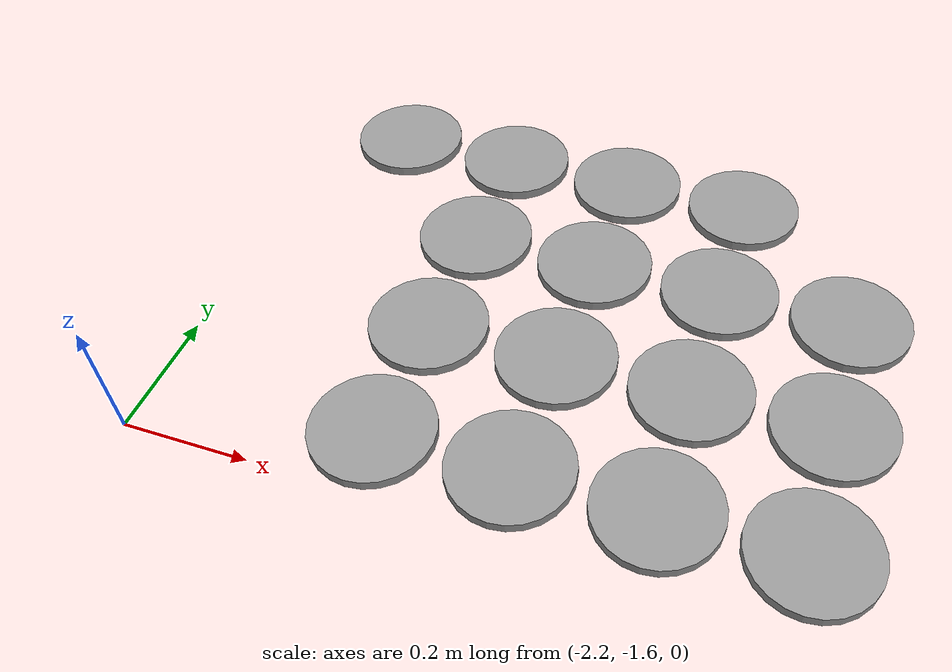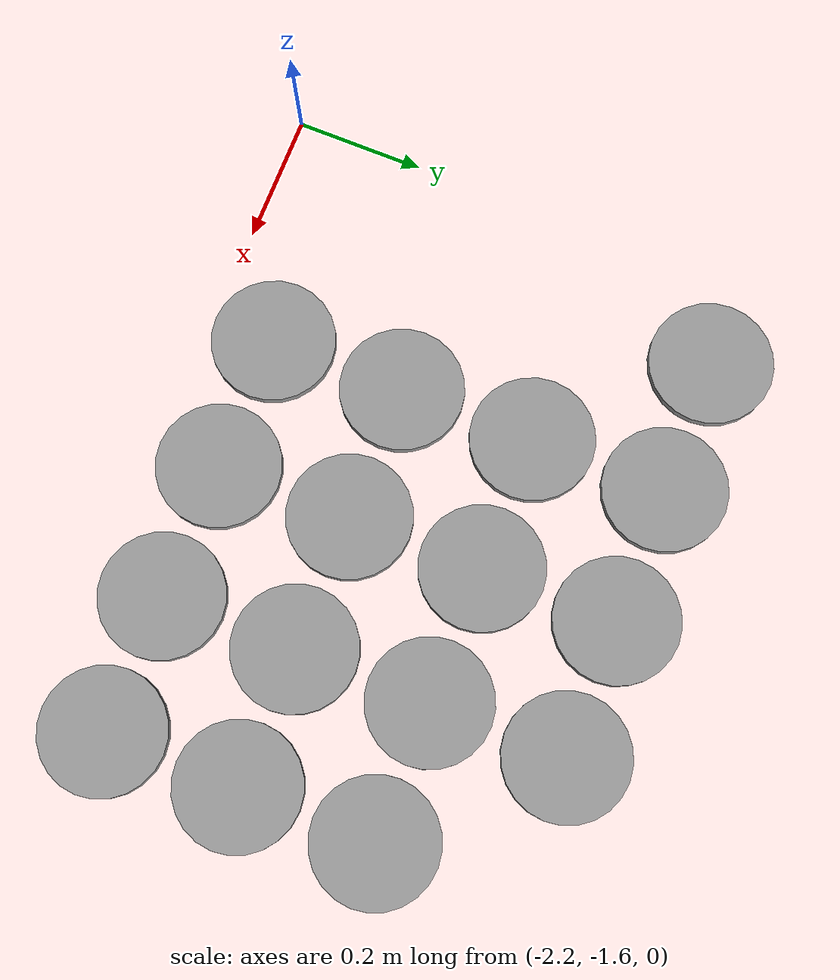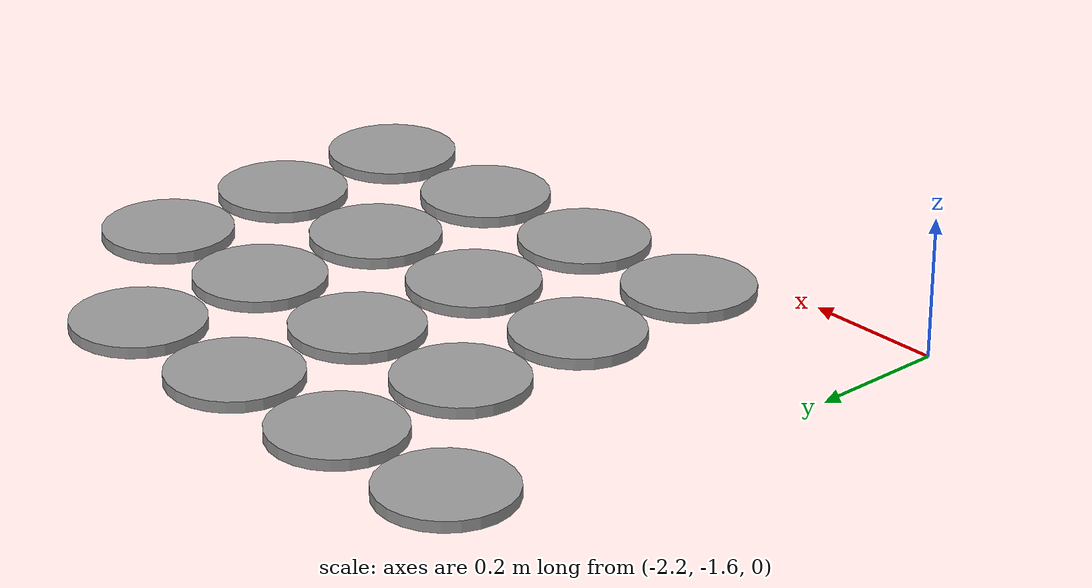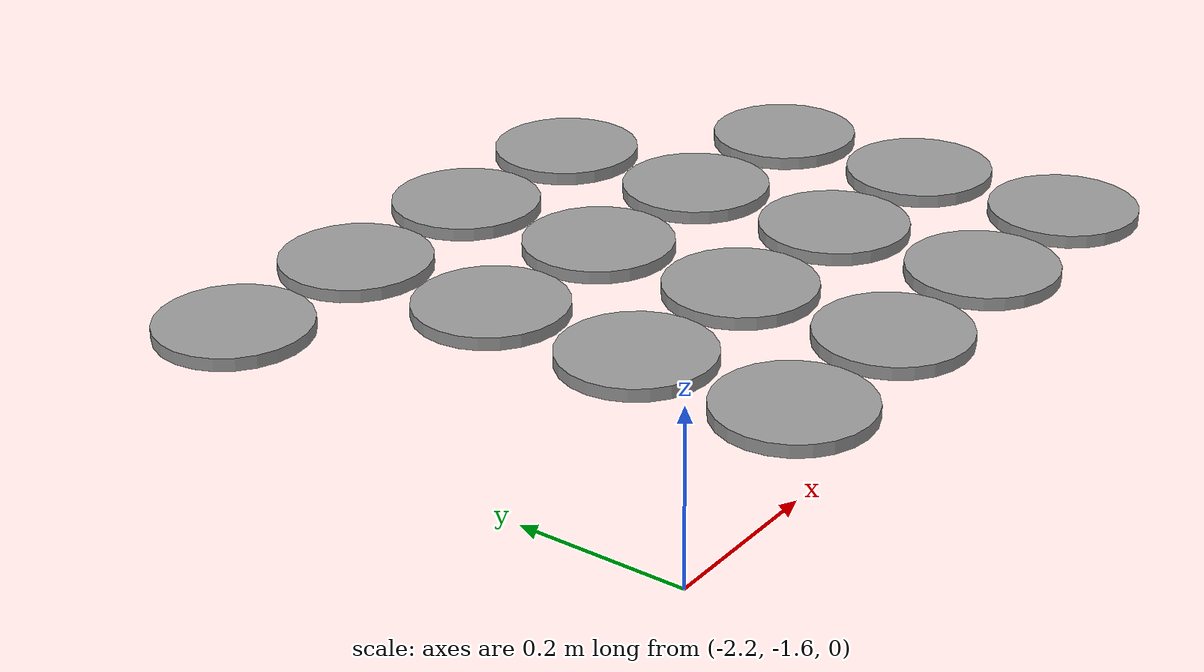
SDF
<sdf version="1.6">
 <world name="default">
  <model name="unit_cylinder_clone_573">
   <pose>-2.06 -0.87 0.008111 0 0 0</pose>
   <link name="link">
    <inertial>
     <mass>1</mass>
     <inertia><ixx>0.145833</ixx><ixy>0</ixy><ixz>0</ixz><iyy>0.145833</iyy><iyz>0</iyz><izz>0.125</izz></inertia>
    </inertial>
    <collision name="collision">
     <geometry><cylinder><radius>0.0950718</radius><length>0.0162339</length></cylinder></geometry>
     <max_contacts>5</max_contacts>
    </collision>
    <visual name="visual">
     <geometry><cylinder><radius>0.0950718</radius><length>0.0162339</length></cylinder></geometry>
     <material>
      <script><name>Gazebo/Grey</name><uri>file://media/materials/scripts/gazebo.material</uri></script>
     </material>
    </visual>
   </link>
  </model>
  <model name="unit_cylinder_clone_575">
   <pose>-1.85 -1.5 0.008111 0 0 0</pose>
   <link name="link">
    <inertial>
     <mass>1</mass>
     <inertia><ixx>0.145833</ixx><ixy>0</ixy><ixz>0</ixz><iyy>0.145833</iyy><iyz>0</iyz><izz>0.125</izz></inertia>
    </inertial>
    <collision name="collision">
     <geometry><cylinder><radius>0.0950718</radius><length>0.0162339</length></cylinder></geometry>
     <max_contacts>5</max_contacts>
    </collision>
    <visual name="visual">
     <geometry><cylinder><radius>0.0950718</radius><length>0.0162339</length></cylinder></geometry>
     <material>
      <script><name>Gazebo/Grey</name><uri>file://media/materials/scripts/gazebo.material</uri></script>
     </material>
    </visual>
   </link>
  </model>
  <model name="unit_cylinder_clone_576">
   <pose>-1.85 -1.29 0.008111 0 0 0</pose>
   <link name="link">
    <inertial>
     <mass>1</mass>
     <inertia><ixx>0.145833</ixx><ixy>0</ixy><ixz>0</ixz><iyy>0.145833</iyy><iyz>0</iyz><izz>0.125</izz></inertia>
    </inertial>
    <collision name="collision">
     <geometry><cylinder><radius>0.0950718</radius><length>0.0162339</length></cylinder></geometry>
     <max_contacts>5</max_contacts>
    </collision>
    <visual name="visual">
     <geometry><cylinder><radius>0.0950718</radius><length>0.0162339</length></cylinder></geometry>
     <material>
      <script><name>Gazebo/Grey</name><uri>file://media/materials/scripts/gazebo.material</uri></script>
     </material>
    </visual>
   </link>
  </model>
  <model name="unit_cylinder_clone_577">
   <pose>-1.85 -1.08 0.008111 0 0 0</pose>
   <link name="link">
    <inertial>
     <mass>1</mass>
     <inertia><ixx>0.145833</ixx><ixy>0</ixy><ixz>0</ixz><iyy>0.145833</iyy><iyz>0</iyz><izz>0.125</izz></inertia>
    </inertial>
    <collision name="collision">
     <geometry><cylinder><radius>0.0950718</radius><length>0.0162339</length></cylinder></geometry>
     <max_contacts>5</max_contacts>
    </collision>
    <visual name="visual">
     <geometry><cylinder><radius>0.0950718</radius><length>0.0162339</length></cylinder></geometry>
     <material>
      <script><name>Gazebo/Grey</name><uri>file://media/materials/scripts/gazebo.material</uri></script>
     </material>
    </visual>
   </link>
  </model>
  <model name="unit_cylinder_clone_578">
   <pose>-1.85 -0.87 0.008111 0 0 0</pose>
   <link name="link">
    <inertial>
     <mass>1</mass>
     <inertia><ixx>0.145833</ixx><ixy>0</ixy><ixz>0</ixz><iyy>0.145833</iyy><iyz>0</iyz><izz>0.125</izz></inertia>
    </inertial>
    <collision name="collision">
     <geometry><cylinder><radius>0.0950718</radius><length>0.0162339</length></cylinder></geometry>
     <max_contacts>5</max_contacts>
    </collision>
    <visual name="visual">
     <geometry><cylinder><radius>0.0950718</radius><length>0.0162339</length></cylinder></geometry>
     <material>
      <script><name>Gazebo/Grey</name><uri>file://media/materials/scripts/gazebo.material</uri></script>
     </material>
    </visual>
   </link>
  </model>
  <model name="unit_cylinder_clone_580">
   <pose>-1.64 -1.5 0.008111 0 0 0</pose>
   <link name="link">
    <inertial>
     <mass>1</mass>
     <inertia><ixx>0.145833</ixx><ixy>0</ixy><ixz>0</ixz><iyy>0.145833</iyy><iyz>0</iyz><izz>0.125</izz></inertia>
    </inertial>
    <collision name="collision">
     <geometry><cylinder><radius>0.0950718</radius><length>0.0162339</length></cylinder></geometry>
     <max_contacts>5</max_contacts>
    </collision>
    <visual name="visual">
     <geometry><cylinder><radius>0.0950718</radius><length>0.0162339</length></cylinder></geometry>
     <material>
      <script><name>Gazebo/Grey</name><uri>file://media/materials/scripts/gazebo.material</uri></script>
     </material>
    </visual>
   </link>
  </model>
  <model name="unit_cylinder_clone_581">
   <pose>-1.64 -1.29 0.008111 0 0 0</pose>
   <link name="link">
    <inertial>
     <mass>1</mass>
     <inertia><ixx>0.145833</ixx><ixy>0</ixy><ixz>0</ixz><iyy>0.145833</iyy><iyz>0</iyz><izz>0.125</izz></inertia>
    </inertial>
    <collision name="collision">
     <geometry><cylinder><radius>0.0950718</radius><length>0.0162339</length></cylinder></geometry>
     <max_contacts>5</max_contacts>
    </collision>
    <visual name="visual">
     <geometry><cylinder><radius>0.0950718</radius><length>0.0162339</length></cylinder></geometry>
     <material>
      <script><name>Gazebo/Grey</name><uri>file://media/materials/scripts/gazebo.material</uri></script>
     </material>
    </visual>
   </link>
  </model>
  <model name="unit_cylinder_clone_582">
   <pose>-1.64 -1.08 0.008111 0 0 0</pose>
   <link name="link">
    <inertial>
     <mass>1</mass>
     <inertia><ixx>0.145833</ixx><ixy>0</ixy><ixz>0</ixz><iyy>0.145833</iyy><iyz>0</iyz><izz>0.125</izz></inertia>
    </inertial>
    <collision name="collision">
     <geometry><cylinder><radius>0.0950718</radius><length>0.0162339</length></cylinder></geometry>
     <max_contacts>5</max_contacts>
    </collision>
    <visual name="visual">
     <geometry><cylinder><radius>0.0950718</radius><length>0.0162339</length></cylinder></geometry>
     <material>
      <script><name>Gazebo/Grey</name><uri>file://media/materials/scripts/gazebo.material</uri></script>
     </material>
    </visual>
   </link>
  </model>
  <model name="unit_cylinder_clone_583">
   <pose>-1.64 -0.87 0.008111 0 0 0</pose>
   <link name="link">
    <inertial>
     <mass>1</mass>
     <inertia><ixx>0.145833</ixx><ixy>0</ixy><ixz>0</ixz><iyy>0.145833</iyy><iyz>0</iyz><izz>0.125</izz></inertia>
    </inertial>
    <collision name="collision">
     <geometry><cylinder><radius>0.0950718</radius><length>0.0162339</length></cylinder></geometry>
     <max_contacts>5</max_contacts>
    </collision>
    <visual name="visual">
     <geometry><cylinder><radius>0.0950718</radius><length>0.0162339</length></cylinder></geometry>
     <material>
      <script><name>Gazebo/Grey</name><uri>file://media/materials/scripts/gazebo.material</uri></script>
     </material>
    </visual>
   </link>
  </model>
  <model name="unit_cylinder_clone_585">
   <pose>-1.43 -1.5 0.008111 0 0 0</pose>
   <link name="link">
    <inertial>
     <mass>1</mass>
     <inertia><ixx>0.145833</ixx><ixy>0</ixy><ixz>0</ixz><iyy>0.145833</iyy><iyz>0</iyz><izz>0.125</izz></inertia>
    </inertial>
    <collision name="collision">
     <geometry><cylinder><radius>0.0950718</radius><length>0.0162339</length></cylinder></geometry>
     <max_contacts>5</max_contacts>
    </collision>
    <visual name="visual">
     <geometry><cylinder><radius>0.0950718</radius><length>0.0162339</length></cylinder></geometry>
     <material>
      <script><name>Gazebo/Grey</name><uri>file://media/materials/scripts/gazebo.material</uri></script>
     </material>
    </visual>
   </link>
  </model>
  <model name="unit_cylinder_clone_586">
   <pose>-1.43 -1.29 0.008111 0 0 0</pose>
   <link name="link">
    <inertial>
     <mass>1</mass>
     <inertia><ixx>0.145833</ixx><ixy>0</ixy><ixz>0</ixz><iyy>0.145833</iyy><iyz>0</iyz><izz>0.125</izz></inertia>
    </inertial>
    <collision name="collision">
     <geometry><cylinder><radius>0.0950718</radius><length>0.0162339</length></cylinder></geometry>
     <max_contacts>5</max_contacts>
    </collision>
    <visual name="visual">
     <geometry><cylinder><radius>0.0950718</radius><length>0.0162339</length></cylinder></geometry>
     <material>
      <script><name>Gazebo/Grey</name><uri>file://media/materials/scripts/gazebo.material</uri></script>
     </material>
    </visual>
   </link>
  </model>
  <model name="unit_cylinder_clone_587">
   <pose>-1.43 -1.08 0.008111 0 0 0</pose>
   <link name="link">
    <inertial>
     <mass>1</mass>
     <inertia><ixx>0.145833</ixx><ixy>0</ixy><ixz>0</ixz><iyy>0.145833</iyy><iyz>0</iyz><izz>0.125</izz></inertia>
    </inertial>
    <collision name="collision">
     <geometry><cylinder><radius>0.0950718</radius><length>0.0162339</length></cylinder></geometry>
     <max_contacts>5</max_contacts>
    </collision>
    <visual name="visual">
     <geometry><cylinder><radius>0.0950718</radius><length>0.0162339</length></cylinder></geometry>
     <material>
      <script><name>Gazebo/Grey</name><uri>file://media/materials/scripts/gazebo.material</uri></script>
     </material>
    </visual>
   </link>
  </model>
  <model name="unit_cylinder_clone_588">
   <pose>-1.43 -0.87 0.008111 0 0 0</pose>
   <link name="link">
    <inertial>
     <mass>1</mass>
     <inertia><ixx>0.145833</ixx><ixy>0</ixy><ixz>0</ixz><iyy>0.145833</iyy><iyz>0</iyz><izz>0.125</izz></inertia>
    </inertial>
    <collision name="collision">
     <geometry><cylinder><radius>0.0950718</radius><length>0.0162339</length></cylinder></geometry>
     <max_contacts>5</max_contacts>
    </collision>
    <visual name="visual">
     <geometry><cylinder><radius>0.0950718</radius><length>0.0162339</length></cylinder></geometry>
     <material>
      <script><name>Gazebo/Grey</name><uri>file://media/materials/scripts/gazebo.material</uri></script>
     </material>
    </visual>
   </link>
  </model>
  <model name="unit_cylinder_clone_590">
   <pose>-1.22 -1.5 0.008111 0 0 0</pose>
   <link name="link">
    <inertial>
     <mass>1</mass>
     <inertia><ixx>0.145833</ixx><ixy>0</ixy><ixz>0</ixz><iyy>0.145833</iyy><iyz>0</iyz><izz>0.125</izz></inertia>
    </inertial>
    <collision name="collision">
     <geometry><cylinder><radius>0.0950718</radius><length>0.0162339</length></cylinder></geometry>
     <max_contacts>5</max_contacts>
    </collision>
    <visual name="visual">
     <geometry><cylinder><radius>0.0950718</radius><length>0.0162339</length></cylinder></geometry>
     <material>
      <script><name>Gazebo/Grey</name><uri>file://media/materials/scripts/gazebo.material</uri></script>
     </material>
    </visual>
   </link>
  </model>
  <model name="unit_cylinder_clone_591">
   <pose>-1.22 -1.29 0.008111 0 0 0</pose>
   <link name="link">
    <inertial>
     <mass>1</mass>
     <inertia><ixx>0.145833</ixx><ixy>0</ixy><ixz>0</ixz><iyy>0.145833</iyy><iyz>0</iyz><izz>0.125</izz></inertia>
    </inertial>
    <collision name="collision">
     <geometry><cylinder><radius>0.0950718</radius><length>0.0162339</length></cylinder></geometry>
     <max_contacts>5</max_contacts>
    </collision>
    <visual name="visual">
     <geometry><cylinder><radius>0.0950718</radius><length>0.0162339</length></cylinder></geometry>
     <material>
      <script><name>Gazebo/Grey</name><uri>file://media/materials/scripts/gazebo.material</uri></script>
     </material>
    </visual>
   </link>
  </model>
  <model name="unit_cylinder_clone_592">
   <pose>-1.22 -1.08 0.008111 0 0 0</pose>
   <link name="link">
    <inertial>
     <mass>1</mass>
     <inertia><ixx>0.145833</ixx><ixy>0</ixy><ixz>0</ixz><iyy>0.145833</iyy><iyz>0</iyz><izz>0.125</izz></inertia>
    </inertial>
    <collision name="collision">
     <geometry><cylinder><radius>0.0950718</radius><length>0.0162339</length></cylinder></geometry>
     <max_contacts>5</max_contacts>
    </collision>
    <visual name="visual">
     <geometry><cylinder><radius>0.0950718</radius><length>0.0162339</length></cylinder></geometry>
     <material>
      <script><name>Gazebo/Grey</name><uri>file://media/materials/scripts/gazebo.material</uri></script>
     </material>
    </visual>
   </link>
  </model>
 </world>
</sdf>
